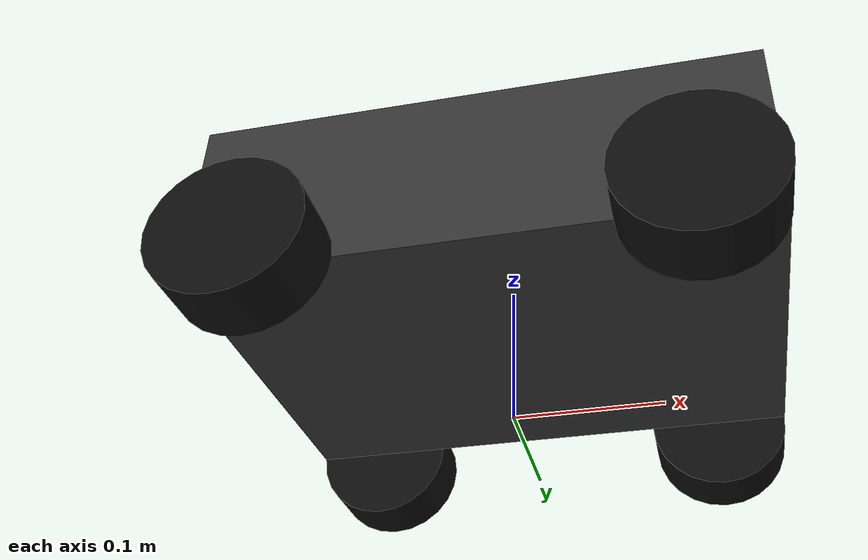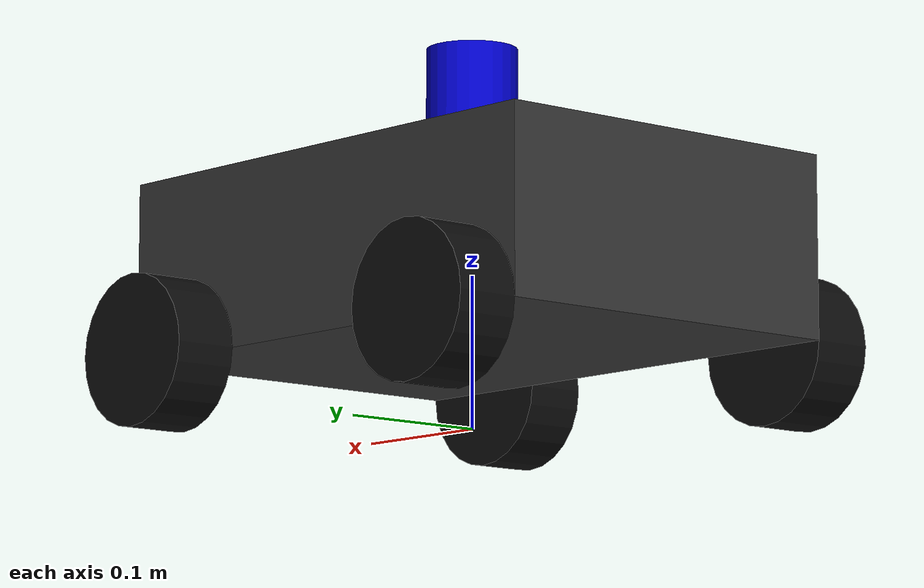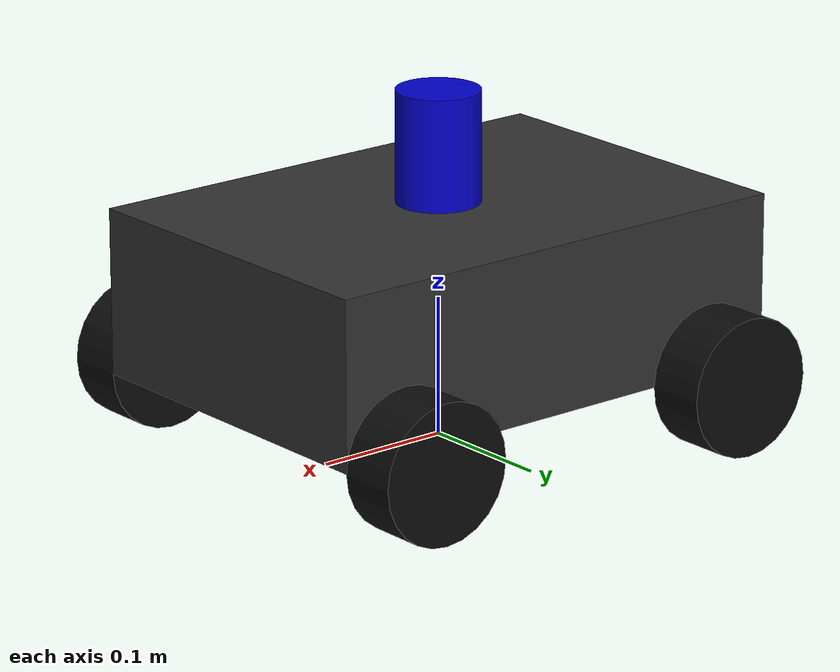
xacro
<?xml version="1.0"?>
<robot xmlns:xacro="http://www.ros.org/wiki/xacro" name="mobile_robot">

  <xacro:property name="chassis_mass"   value="3.2"/>
  <xacro:property name="chassis_length" value="0.370"/>
  <xacro:property name="chassis_width"  value="0.260"/>
  <xacro:property name="chassis_height" value="0.120"/>

  <xacro:property name="wheel_mass"     value="0.800"/>
  <xacro:property name="wheel_radius"   value="0.050"/>
  <xacro:property name="wheel_length"   value="0.043"/>

  <xacro:property name="lidar_mass"     value="0.230"/>
  <xacro:property name="lidar_radius"   value="0.030"/>
  <xacro:property name="lidar_length"   value="0.08"/>

  <material name="chassis_color"><color rgba="0.2 0.2 0.2 1"/></material>
  <material name="wheel_color"><color rgba="0.05 0.05 0.05 1"/></material>
  <material name="lidar_color"><color rgba="0.0 0.0 0.8 1"/></material>

  <xacro:macro name="box_inertia" params="m l w h">
    <inertial>
      <origin xyz="0 0 0" rpy="0 0 0"/>
      <mass value="${m}"/>
      <inertia ixx="${(1.0/12.0) * m * (w*w + h*h)}" ixy="0.0" ixz="0.0"
               iyy="${(1.0/12.0) * m * (l*l + h*h)}" iyz="0.0"
               izz="${(1.0/12.0) * m * (l*l + w*w)}"/>
    </inertial>
  </xacro:macro>

  <xacro:macro name="wheel_cylinder_inertia" params="m r h">
    <inertial>
      <origin xyz="0 0 0" rpy="1.5708 0 0"/>
      <mass value="${m}"/>
      <inertia ixx="${(1.0/12.0) * m * (3.0*r*r + h*h)}" ixy="0.0" ixz="0.0"
               iyy="${(1.0/2.0) * m * (r*r)}" iyz="0.0"
               izz="${(1.0/12.0) * m * (3.0*r*r + h*h)}"/>
    </inertial>
  </xacro:macro>

  <xacro:macro name="lidar_inertia" params="m r h">
    <inertial>
      <origin xyz="0 0 0" rpy="0 0 0"/>
      <mass value="${m}"/>
      <inertia ixx="${(1.0/12.0) * m * (3.0*r*r + h*h)}" ixy="0.0" ixz="0.0"
               iyy="${(1.0/12.0) * m * (3.0*r*r + h*h)}" iyz="0.0"
               izz="${(1.0/2.0) * m * (r*r)}"/>
    </inertial>
  </xacro:macro>

  <link name="base_footprint"/>

  <joint name="base_footprint_joint" type="fixed">
    <parent link="base_footprint"/>
    <child link="base_link"/>
    <origin xyz="0 0 0.11" rpy="0 0 0"/>
  </joint>

  <link name="base_link">
    <xacro:box_inertia m="${chassis_mass}" l="${chassis_length}" w="${chassis_width}" h="${chassis_height}"/>
    <visual name="base_link_visual">
      <origin xyz="0 0 0" rpy="0 0 0"/>
      <geometry>
        <box size="${chassis_length} ${chassis_width} ${chassis_height}"/>
      </geometry>
      <material name="chassis_color"/>
    </visual>
    <collision name="base_link_collision">
      <origin xyz="0 0 0" rpy="0 0 0"/>
      <geometry>
        <box size="${chassis_length} ${chassis_width} ${chassis_height}"/>
      </geometry>
    </collision>
  </link>

  <gazebo reference="base_link">
    <material>Gazebo/DarkGrey</material>
  </gazebo>

  <xacro:macro name="wheel" params="prefix x_reflect y_reflect">
    <link name="${prefix}_wheel">
      <xacro:wheel_cylinder_inertia m="${wheel_mass}" r="${wheel_radius}" h="${wheel_length}"/>
      <visual name="${prefix}_wheel_visual">
        <origin xyz="0 0 0" rpy="1.5708 0 0"/>
        <geometry>
          <cylinder radius="${wheel_radius}" length="${wheel_length}"/>
        </geometry>
        <material name="wheel_color"/>
      </visual>
      <collision name="${prefix}_wheel_collision">
        <origin xyz="0 0 0" rpy="1.5708 0 0"/>
        <geometry>
          <cylinder radius="${wheel_radius}" length="${wheel_length}"/>
        </geometry>
      </collision>
    </link>

    <gazebo reference="${prefix}_wheel">
      <mu1>1.5</mu1>
      <mu2>1.5</mu2>
      <kp>1000000.0</kp>
      <kd>100.0</kd>
    </gazebo>

    <joint name="${prefix}_wheel_joint" type="continuous">
      <origin xyz="${x_reflect * 0.135} ${y_reflect * 0.1515} -0.06" rpy="0 0 0"/>
      <parent link="base_link"/>
      <child link="${prefix}_wheel"/>
      <axis xyz="0 1 0"/>
    </joint>
  </xacro:macro>

  <xacro:wheel prefix="right_front" x_reflect="1"  y_reflect="-1"/>
  <xacro:wheel prefix="right_rear"  x_reflect="-1" y_reflect="-1"/>
  <xacro:wheel prefix="left_front"  x_reflect="1"  y_reflect="1"/>
  <xacro:wheel prefix="left_rear"   x_reflect="-1" y_reflect="1"/>

  <link name="laser_frame">
    <xacro:lidar_inertia m="${lidar_mass}" r="${lidar_radius}" h="${lidar_length}"/>
    <visual name="gpu_lidar_visual">
      <origin xyz="0 0 0" rpy="0 0 0"/>
      <geometry>
        <cylinder radius="${lidar_radius}" length="${lidar_length}"/>
      </geometry>
      <material name="lidar_color"/>
    </visual>
    <collision name="gpu_lidar_collision">
      <origin xyz="0 0 0" rpy="0 0 0"/>
      <geometry>
        <cylinder radius="${lidar_radius}" length="${lidar_length}"/>
      </geometry>
    </collision>

  </link>

  <joint name="laser_joint" type="fixed">
    <origin xyz="0 0 0.1" rpy="0 0 0"/>
    <parent link="base_link"/>
    <child link="laser_frame"/>
  </joint>

  <link name="imu_link"/>
    <joint name="imu_joint" type="fixed">
    <origin xyz="-0.040 0.0 0.07" rpy="0 0 0"/>
    <parent link="base_link"/>
    <child link="imu_link"/>
  </joint>
  <gazebo>
    <plugin filename="gz-sim-diff-drive-system" name="gz::sim::systems::DiffDrive">
      <left_joint>left_front_wheel_joint</left_joint>
      <left_joint>left_rear_wheel_joint</left_joint>
      <right_joint>right_front_wheel_joint</right_joint>
      <right_joint>right_rear_wheel_joint</right_joint>
      <wheel_separation>0.3030</wheel_separation>
      <wheel_radius>${wheel_radius}</wheel_radius>
      <topic>/cmd_vel</topic>
      </plugin>

      <plugin
        filename="gz-sim-odometry-publisher-system"
        name="gz::sim::systems::OdometryPublisher">
        <odom_frame>odom</odom_frame>
        <robot_base_frame>base_footprint</robot_base_frame>
        <odom_publish_frequency>50</odom_publish_frequency>
        <odom_topic>/odom</odom_topic>
        <tf_topic>/tf</tf_topic>
        <dimensions>2</dimensions>
        </plugin>

    <plugin filename="gz-sim-joint-state-publisher-system" name="gz::sim::systems::JointStatePublisher">
      <topic>/joint_states</topic>
      <joint_name>left_front_wheel_joint</joint_name>
      <joint_name>left_rear_wheel_joint</joint_name>
      <joint_name>right_front_wheel_joint</joint_name>
      <joint_name>right_rear_wheel_joint</joint_name>
    </plugin>
  </gazebo>

  <gazebo reference = "laser_frame">
   <sensor name="laser" type="gpu_lidar">
      <topic>/lidar</topic>
      <update_rate>10</update_rate>
      <frame_id>laser_frame</frame_id>
      <lidar>
        <scan>
          <horizontal>
            <samples>360</samples>
            <resolution>1</resolution>
            <min_angle>-3.14159</min_angle>
            <max_angle>3.14159</max_angle>
          </horizontal>
        </scan>
        <range>
          <min>0.12</min>
          <max>12.0</max>
          <resolution>0.01</resolution>
        </range>
        <noise>
          <type>gaussian</type>
          <mean>0.0</mean>
          <stddev>0.001</stddev>
        </noise>
      </lidar>
      <always_on>1</always_on>
      <visualize>true</visualize>
    </sensor>
    </gazebo>

</robot>
